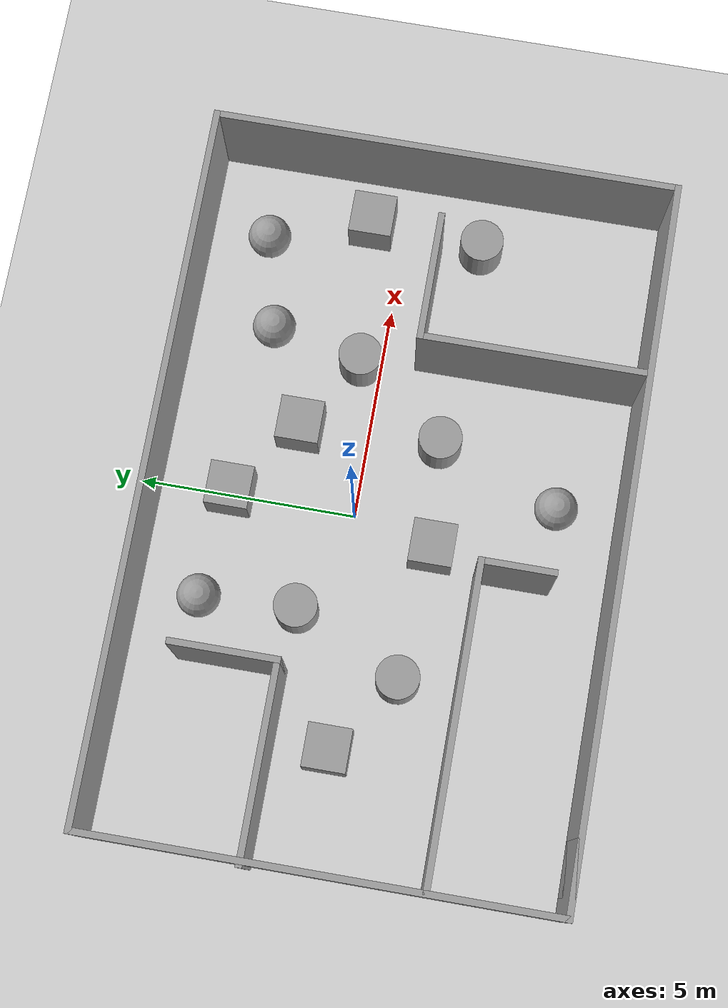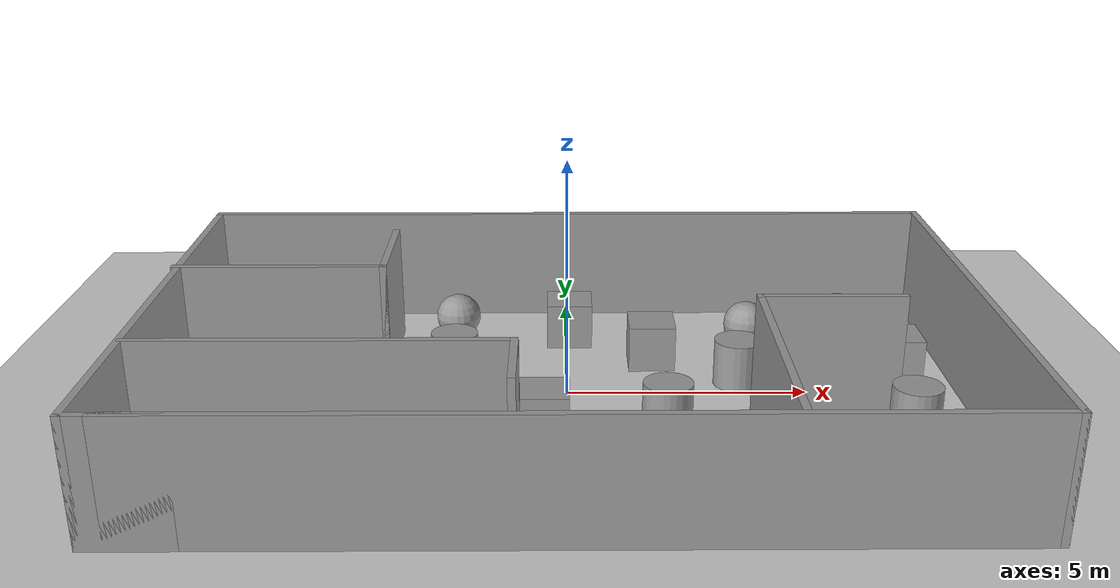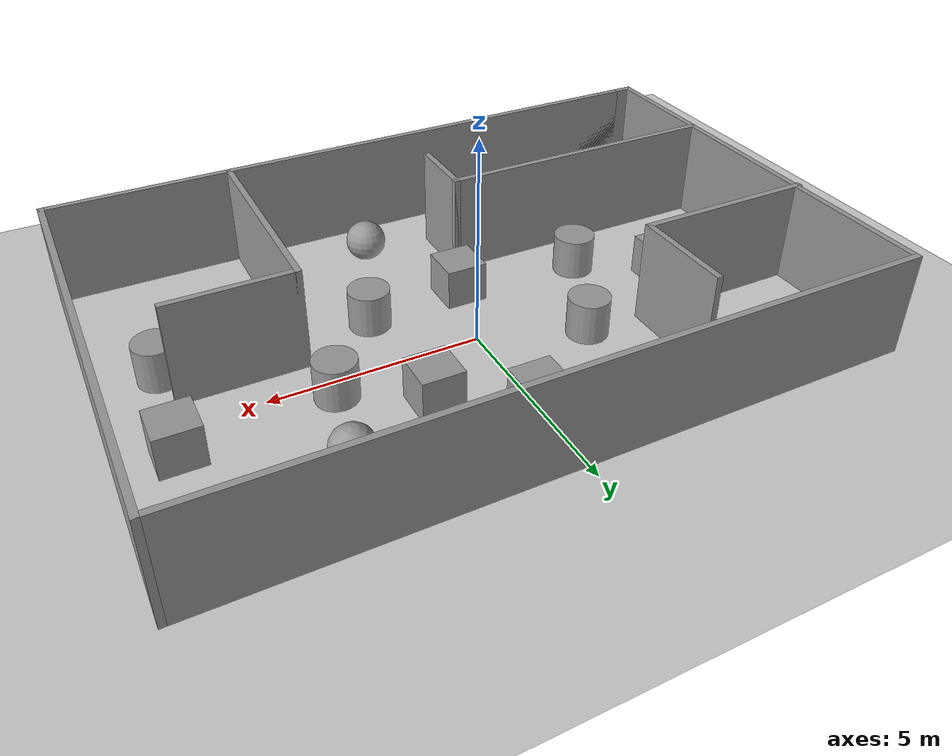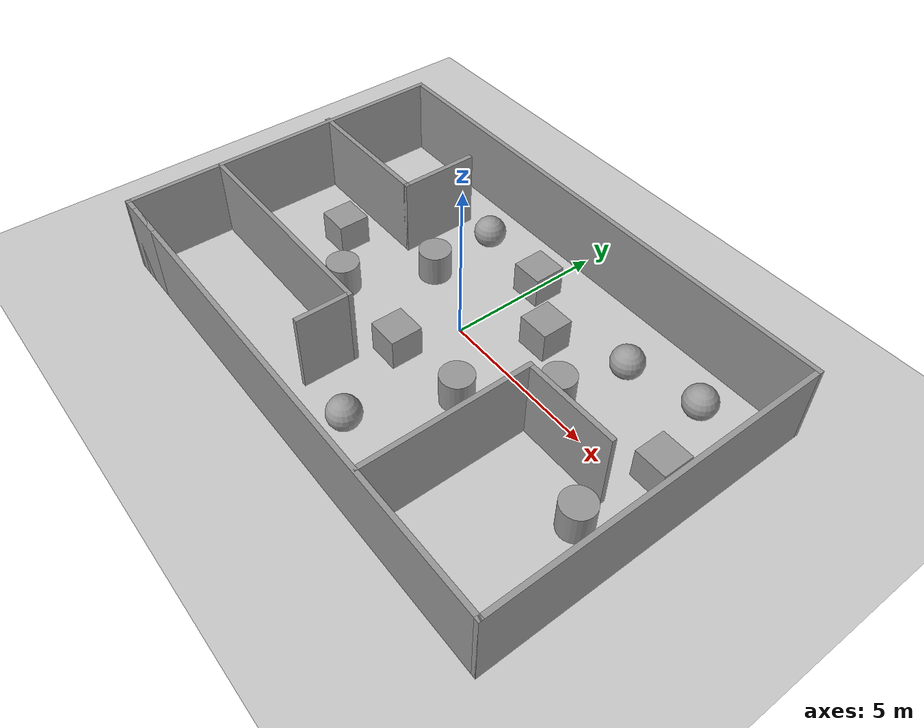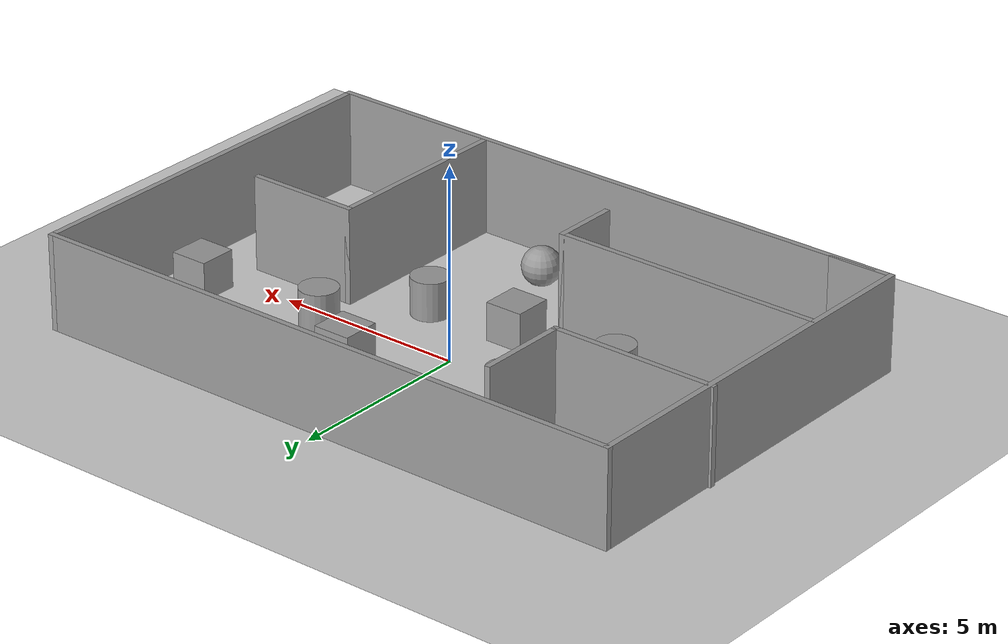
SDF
<sdf version="1.7">
 <world name="default">
  <light name="sun" type="directional">
   <pose>0 0 10 0 -0 0</pose>
   <diffuse>0.8 0.8 0.8 1</diffuse>
   <specular>0.2 0.2 0.2 1</specular>
   <attenuation>
    <range>1000</range>
    <constant>0.9</constant>
    <linear>0.01</linear>
    <quadratic>0.001</quadratic>
   </attenuation>
   <direction>-0.5 0.1 -0.9</direction>
   <spot><inner_angle>0</inner_angle><outer_angle>0</outer_angle><falloff>0</falloff></spot>
  </light>
  <model name="ground_plane">
   <static>1</static>
   <link name="link">
    <collision name="collision">
     <geometry><plane><normal>0 0 1</normal><size>100 100</size></plane></geometry>
     <surface>
      <contact><collide_bitmask>65535</collide_bitmask></contact>
      <friction><ode><mu>100</mu><mu2>50</mu2></ode></friction>
     </surface>
    </collision>
    <visual name="visual">
     <cast_shadows>0</cast_shadows>
     <geometry><plane><normal>0 0 1</normal><size>100 100</size></plane></geometry>
     <material>
      <script><uri>file://media/materials/scripts/gazebo.material</uri><name>Gazebo/Grey</name></script>
     </material>
    </visual>
   </link>
  </model>
  <gravity>0 0 -9.8</gravity>
  <magnetic_field>6e-06 2.3e-05 -4.2e-05</magnetic_field>
  <atmosphere type="adiabatic"/>
  <physics type="ode">
   <max_step_size>0.001</max_step_size>
   <real_time_factor>1</real_time_factor>
   <real_time_update_rate>1000</real_time_update_rate>
  </physics>
  <scene><ambient>0.4 0.4 0.4 1</ambient><background>0.7 0.7 0.7 1</background><shadows>1</shadows></scene>
  <audio><device>default</device></audio>
  <spherical_coordinates>
   <surface_model>EARTH_WGS84</surface_model>
   <latitude_deg>0</latitude_deg>
   <longitude_deg>0</longitude_deg>
   <elevation>0</elevation>
   <heading_deg>0</heading_deg>
  </spherical_coordinates>
  <model name="room">
   <pose>0.011963 -0.693169 0 0 -0 0</pose>
   <link name="Wall_10">
    <collision name="Wall_10_Collision">
     <geometry><box><size>2.5 0.15 2.5</size></box></geometry>
     <pose>0 0 1.25 0 -0 0</pose>
    </collision>
    <visual name="Wall_10_Visual">
     <pose>0 0 1.25 0 -0 0</pose>
     <geometry><box><size>2.5 0.15 2.5</size></box></geometry>
     <material>
      <script><uri>file://media/materials/scripts/gazebo.material</uri><name>Gazebo/Grey</name></script>
      <ambient>1 1 1 1</ambient>
     </material>
     <meta><layer>0</layer></meta>
    </visual>
    <pose>-3.85938 2.82056 0 0 -0 1.5708</pose>
   </link>
   <link name="Wall_12">
    <collision name="Wall_12_Collision">
     <geometry><box><size>7.25 0.15 2.5</size></box></geometry>
     <pose>0 0 1.25 0 -0 0</pose>
    </collision>
    <visual name="Wall_12_Visual">
     <pose>0 0 1.25 0 -0 0</pose>
     <geometry><box><size>7.25 0.15 2.5</size></box></geometry>
     <material>
      <script><uri>file://media/materials/scripts/gazebo.material</uri><name>Gazebo/Grey</name></script>
      <ambient>1 1 1 1</ambient>
     </material>
     <meta><layer>0</layer></meta>
    </visual>
    <pose>-4.53632 -2.29222 0 0 -0 0</pose>
   </link>
   <link name="Wall_13">
    <collision name="Wall_13_Collision">
     <geometry><box><size>1.75 0.15 2.5</size></box></geometry>
     <pose>0 0 1.25 0 -0 0</pose>
    </collision>
    <visual name="Wall_13_Visual">
     <pose>0 0 1.25 0 -0 0</pose>
     <geometry><box><size>1.75 0.15 2.5</size></box></geometry>
     <material>
      <script><uri>file://media/materials/scripts/gazebo.material</uri><name>Gazebo/Grey</name></script>
      <ambient>1 1 1 1</ambient>
     </material>
     <meta><layer>0</layer></meta>
    </visual>
    <pose>-0.986324 -3.09222 0 0 -0 -1.5708</pose>
   </link>
   <link name="Wall_17">
    <collision name="Wall_17_Collision">
     <geometry><box><size>5.25 0.15 2.5</size></box></geometry>
     <pose>0 0 1.25 0 -0 0</pose>
    </collision>
    <visual name="Wall_17_Visual">
     <pose>0 0 1.25 0 -0 0</pose>
     <geometry><box><size>5.25 0.15 2.5</size></box></geometry>
     <material>
      <script><uri>file://media/materials/scripts/gazebo.material</uri><name>Gazebo/Grey</name></script>
      <ambient>1 1 1 1</ambient>
     </material>
     <meta><layer>0</layer></meta>
    </visual>
    <pose>3.78856 -2.69556 0 0 -0 1.5708</pose>
   </link>
   <link name="Wall_18">
    <collision name="Wall_18_Collision">
     <geometry><box><size>3 0.15 2.5</size></box></geometry>
     <pose>0 0 1.25 0 -0 0</pose>
    </collision>
    <visual name="Wall_18_Visual">
     <pose>0 0 1.25 0 -0 0</pose>
     <geometry><box><size>3 0.15 2.5</size></box></geometry>
     <material>
      <script><uri>file://media/materials/scripts/gazebo.material</uri><name>Gazebo/Grey</name></script>
      <ambient>1 1 1 1</ambient>
     </material>
     <meta><layer>0</layer></meta>
    </visual>
    <pose>5.21356 -0.145559 0 0 -0 0</pose>
   </link>
   <link name="Wall_3">
    <collision name="Wall_3_Collision">
     <geometry><box><size>16 0.15 2.5</size></box></geometry>
     <pose>0 0 1.25 0 -0 0</pose>
    </collision>
    <visual name="Wall_3_Visual">
     <pose>0 0 1.25 0 -0 0</pose>
     <geometry><box><size>16 0.15 2.5</size></box></geometry>
     <material>
      <script><uri>file://media/materials/scripts/gazebo.material</uri><name>Gazebo/Grey</name></script>
      <ambient>1 1 1 1</ambient>
     </material>
     <meta><layer>0</layer></meta>
    </visual>
    <pose>0.28438 -5.3 0 0 -0 0</pose>
   </link>
   <link name="Wall_4">
    <collision name="Wall_4_Collision">
     <geometry><box><size>10.75 0.15 2.5</size></box></geometry>
     <pose>0 0 1.25 0 -0 0</pose>
    </collision>
    <visual name="Wall_4_Visual">
     <pose>0 0 1.25 0 -0 0</pose>
     <geometry><box><size>10.75 0.15 2.5</size></box></geometry>
     <material>
      <script><uri>file://media/materials/scripts/gazebo.material</uri><name>Gazebo/Grey</name></script>
      <ambient>1 1 1 1</ambient>
     </material>
     <meta><layer>0</layer></meta>
    </visual>
    <pose>8.20938 -0 0 0 -0 1.5708</pose>
   </link>
   <link name="Wall_5">
    <collision name="Wall_5_Collision">
     <geometry><box><size>16.5 0.15 2.5</size></box></geometry>
     <pose>0 0 1.25 0 -0 0</pose>
    </collision>
    <visual name="Wall_5_Visual">
     <pose>0 0 1.25 0 -0 0</pose>
     <geometry><box><size>16.5 0.15 2.5</size></box></geometry>
     <material>
      <script><uri>file://media/materials/scripts/gazebo.material</uri><name>Gazebo/Grey</name></script>
      <ambient>1 1 1 1</ambient>
     </material>
     <meta><layer>0</layer></meta>
    </visual>
    <pose>0.03438 5.3 0 0 -0 3.14159</pose>
   </link>
   <link name="Wall_6">
    <collision name="Wall_6_Collision">
     <geometry><box><size>10.75 0.15 2.5</size></box></geometry>
     <pose>0 0 1.25 0 -0 0</pose>
    </collision>
    <visual name="Wall_6_Visual">
     <pose>0 0 1.25 0 -0 0</pose>
     <geometry><box><size>10.75 0.15 2.5</size></box></geometry>
     <material>
      <script><uri>file://media/materials/scripts/gazebo.material</uri><name>Gazebo/Grey</name></script>
      <ambient>1 1 1 1</ambient>
     </material>
     <meta><layer>0</layer></meta>
    </visual>
    <pose>-8.14062 -0 0 0 -0 -1.5708</pose>
   </link>
   <link name="Wall_7">
    <collision name="Wall_7_Collision">
     <geometry><box><size>1.75 0.15 2.5</size></box></geometry>
     <pose>0 0 1.25 0 -0 0</pose>
    </collision>
    <visual name="Wall_7_Visual">
     <pose>0 0 1.25 0 -0 0</pose>
     <geometry><box><size>1.75 0.15 2.5</size></box></geometry>
     <material>
      <script><uri>file://media/materials/scripts/gazebo.material</uri><name>Gazebo/Grey</name></script>
      <ambient>1 1 1 1</ambient>
     </material>
     <meta><layer>0</layer></meta>
    </visual>
    <pose>-7.34062 -5.3 0 0 -0 0</pose>
   </link>
   <link name="Wall_9">
    <collision name="Wall_9_Collision">
     <geometry><box><size>4.5 0.15 2.5</size></box></geometry>
     <pose>0 0 1.25 0 -0 0</pose>
    </collision>
    <visual name="Wall_9_Visual">
     <pose>0 0 1.25 0 -0 0</pose>
     <geometry><box><size>4.5 0.15 2.5</size></box></geometry>
     <material>
      <script><uri>file://media/materials/scripts/gazebo.material</uri><name>Gazebo/Grey</name></script>
      <ambient>1 1 1 1</ambient>
     </material>
     <meta><layer>0</layer></meta>
    </visual>
    <pose>-6.03438 1.64556 0 0 -0 0</pose>
   </link>
   <static>1</static>
  </model>
  <model name="unit_box">
   <pose>-5.39188 -0.350744 0.499995 -1e-05 -0 -0</pose>
   <link name="link">
    <inertial>
     <mass>1</mass>
     <inertia>
      <ixx>0.166667</ixx>
      <ixy>0</ixy>
      <ixz>0</ixz>
      <iyy>0.166667</iyy>
      <iyz>0</iyz>
      <izz>0.166667</izz>
     </inertia>
    </inertial>
    <collision name="collision"><geometry><box><size>1 1 1</size></box></geometry></collision>
    <visual name="visual">
     <geometry><box><size>1 1 1</size></box></geometry>
     <material>
      <script><name>Gazebo/Grey</name><uri>file://media/materials/scripts/gazebo.material</uri></script>
     </material>
    </visual>
   </link>
  </model>
  <model name="unit_cylinder">
   <pose>-3.59928 -1.6188 0.499992 -3e-06 3e-06 0</pose>
   <link name="link">
    <inertial>
     <mass>1</mass>
     <inertia><ixx>0.145833</ixx><ixy>0</ixy><ixz>0</ixz><iyy>0.145833</iyy><iyz>0</iyz><izz>0.125</izz></inertia>
    </inertial>
    <collision name="collision">
     <geometry><cylinder><radius>0.5</radius><length>1</length></cylinder></geometry>
    </collision>
    <visual name="visual">
     <geometry><cylinder><radius>0.5</radius><length>1</length></cylinder></geometry>
     <material>
      <script><name>Gazebo/Grey</name><uri>file://media/materials/scripts/gazebo.material</uri></script>
     </material>
    </visual>
   </link>
  </model>
  <model name="unit_sphere">
   <pose>-2.47899 3.13122 0.5 0 -0 0</pose>
   <link name="link">
    <inertial>
     <mass>1</mass>
     <inertia><ixx>0.1</ixx><ixy>0</ixy><ixz>0</ixz><iyy>0.1</iyy><iyz>0</iyz><izz>0.1</izz></inertia>
    </inertial>
    <collision name="collision"><geometry><sphere><radius>0.5</radius></sphere></geometry></collision>
    <visual name="visual">
     <geometry><sphere><radius>0.5</radius></sphere></geometry>
     <material>
      <script><name>Gazebo/Grey</name><uri>file://media/materials/scripts/gazebo.material</uri></script>
     </material>
    </visual>
   </link>
  </model>
  <model name="unit_cylinder_0">
   <pose>-2.39916 0.904059 0.499992 -3e-06 3e-06 0</pose>
   <link name="link">
    <inertial>
     <mass>1</mass>
     <inertia><ixx>0.145833</ixx><ixy>0</ixy><ixz>0</ixz><iyy>0.145833</iyy><iyz>0</iyz><izz>0.125</izz></inertia>
    </inertial>
    <collision name="collision">
     <geometry><cylinder><radius>0.5</radius><length>1</length></cylinder></geometry>
    </collision>
    <visual name="visual">
     <geometry><cylinder><radius>0.5</radius><length>1</length></cylinder></geometry>
     <material>
      <script><name>Gazebo/Grey</name><uri>file://media/materials/scripts/gazebo.material</uri></script>
     </material>
    </visual>
   </link>
  </model>
  <model name="unit_box_0">
   <pose>-0.465709 -1.88094 0.499995 -1e-05 -0 -0</pose>
   <link name="link">
    <inertial>
     <mass>1</mass>
     <inertia>
      <ixx>0.166667</ixx>
      <ixy>0</ixy>
      <ixz>0</ixz>
      <iyy>0.166667</iyy>
      <iyz>0</iyz>
      <izz>0.166667</izz>
     </inertia>
    </inertial>
    <collision name="collision"><geometry><box><size>1 1 1</size></box></geometry></collision>
    <visual name="visual">
     <geometry><box><size>1 1 1</size></box></geometry>
     <material>
      <script><name>Gazebo/Grey</name><uri>file://media/materials/scripts/gazebo.material</uri></script>
     </material>
    </visual>
   </link>
  </model>
  <model name="unit_box_1">
   <pose>0.06598 2.88817 0.499995 0 1e-05 0</pose>
   <link name="link">
    <inertial>
     <mass>1</mass>
     <inertia>
      <ixx>0.166667</ixx>
      <ixy>0</ixy>
      <ixz>0</ixz>
      <iyy>0.166667</iyy>
      <iyz>0</iyz>
      <izz>0.166667</izz>
     </inertia>
    </inertial>
    <collision name="collision"><geometry><box><size>1 1 1</size></box></geometry></collision>
    <visual name="visual">
     <geometry><box><size>1 1 1</size></box></geometry>
     <material>
      <script><name>Gazebo/Grey</name><uri>file://media/materials/scripts/gazebo.material</uri></script>
     </material>
    </visual>
   </link>
  </model>
  <model name="unit_sphere_0">
   <pose>0.876013 -4.51706 0.5 0 -0 0</pose>
   <link name="link">
    <inertial>
     <mass>1</mass>
     <inertia><ixx>0.1</ixx><ixy>0</ixy><ixz>0</ixz><iyy>0.1</iyy><iyz>0</iyz><izz>0.1</izz></inertia>
    </inertial>
    <collision name="collision"><geometry><sphere><radius>0.5</radius></sphere></geometry></collision>
    <visual name="visual">
     <geometry><sphere><radius>0.5</radius></sphere></geometry>
     <material>
      <script><name>Gazebo/Grey</name><uri>file://media/materials/scripts/gazebo.material</uri></script>
     </material>
    </visual>
   </link>
  </model>
  <model name="unit_sphere_1">
   <pose>4.06825 2.6183 0.5 0 -0 0</pose>
   <link name="link">
    <inertial>
     <mass>1</mass>
     <inertia><ixx>0.1</ixx><ixy>0</ixy><ixz>0</ixz><iyy>0.1</iyy><iyz>0</iyz><izz>0.1</izz></inertia>
    </inertial>
    <collision name="collision"><geometry><sphere><radius>0.5</radius></sphere></geometry></collision>
    <visual name="visual">
     <geometry><sphere><radius>0.5</radius></sphere></geometry>
     <material>
      <script><name>Gazebo/Grey</name><uri>file://media/materials/scripts/gazebo.material</uri></script>
     </material>
    </visual>
   </link>
  </model>
  <model name="unit_cylinder_1">
   <pose>3.60385 0.491377 0.499998 3e-06 -4e-06 0</pose>
   <link name="link">
    <inertial>
     <mass>1</mass>
     <inertia><ixx>0.145833</ixx><ixy>0</ixy><ixz>0</ixz><iyy>0.145833</iyy><iyz>0</iyz><izz>0.125</izz></inertia>
    </inertial>
    <collision name="collision">
     <geometry><cylinder><radius>0.5</radius><length>1</length></cylinder></geometry>
    </collision>
    <visual name="visual">
     <geometry><cylinder><radius>0.5</radius><length>1</length></cylinder></geometry>
     <material>
      <script><name>Gazebo/Grey</name><uri>file://media/materials/scripts/gazebo.material</uri></script>
     </material>
    </visual>
   </link>
  </model>
  <model name="unit_box_2">
   <pose>7.03362 0.802369 0.499995 0 1e-05 0</pose>
   <link name="link">
    <inertial>
     <mass>1</mass>
     <inertia>
      <ixx>0.166667</ixx>
      <ixy>0</ixy>
      <ixz>0</ixz>
      <iyy>0.166667</iyy>
      <iyz>0</iyz>
      <izz>0.166667</izz>
     </inertia>
    </inertial>
    <collision name="collision"><geometry><box><size>1 1 1</size></box></geometry></collision>
    <visual name="visual">
     <geometry><box><size>1 1 1</size></box></geometry>
     <material>
      <script><name>Gazebo/Grey</name><uri>file://media/materials/scripts/gazebo.material</uri></script>
     </material>
    </visual>
   </link>
  </model>
  <model name="unit_cylinder_2">
   <pose>6.80536 -1.82254 0.499993 -3e-06 -3e-06 0</pose>
   <link name="link">
    <inertial>
     <mass>1</mass>
     <inertia><ixx>0.145833</ixx><ixy>0</ixy><ixz>0</ixz><iyy>0.145833</iyy><iyz>0</iyz><izz>0.125</izz></inertia>
    </inertial>
    <collision name="collision">
     <geometry><cylinder><radius>0.5</radius><length>1</length></cylinder></geometry>
    </collision>
    <visual name="visual">
     <geometry><cylinder><radius>0.5</radius><length>1</length></cylinder></geometry>
     <material>
      <script><name>Gazebo/Grey</name><uri>file://media/materials/scripts/gazebo.material</uri></script>
     </material>
    </visual>
   </link>
  </model>
  <model name="unit_sphere_2">
   <pose>6.23445 3.13092 0.5 0 -0 0</pose>
   <link name="link">
    <inertial>
     <mass>1</mass>
     <inertia><ixx>0.1</ixx><ixy>0</ixy><ixz>0</ixz><iyy>0.1</iyy><iyz>0</iyz><izz>0.1</izz></inertia>
    </inertial>
    <collision name="collision"><geometry><sphere><radius>0.5</radius></sphere></geometry></collision>
    <visual name="visual">
     <geometry><sphere><radius>0.5</radius></sphere></geometry>
     <material>
      <script><name>Gazebo/Grey</name><uri>file://media/materials/scripts/gazebo.material</uri></script>
     </material>
    </visual>
   </link>
  </model>
  <model name="unit_cylinder_3">
   <pose>1.96262 -1.64839 0.499993 -3e-06 -4e-06 -0</pose>
   <link name="link">
    <inertial>
     <mass>1</mass>
     <inertia><ixx>0.145833</ixx><ixy>0</ixy><ixz>0</ixz><iyy>0.145833</iyy><iyz>0</iyz><izz>0.125</izz></inertia>
    </inertial>
    <collision name="collision">
     <geometry><cylinder><radius>0.5</radius><length>1</length></cylinder></geometry>
    </collision>
    <visual name="visual">
     <geometry><cylinder><radius>0.5</radius><length>1</length></cylinder></geometry>
     <material>
      <script><name>Gazebo/Grey</name><uri>file://media/materials/scripts/gazebo.material</uri></script>
     </material>
    </visual>
   </link>
  </model>
  <model name="unit_box_3">
   <pose>1.84243 1.58771 0.5 0 -0 0</pose>
   <link name="link">
    <inertial>
     <mass>1</mass>
     <inertia>
      <ixx>0.166667</ixx>
      <ixy>0</ixy>
      <ixz>0</ixz>
      <iyy>0.166667</iyy>
      <iyz>0</iyz>
      <izz>0.166667</izz>
     </inertia>
    </inertial>
    <collision name="collision"><geometry><box><size>1 1 1</size></box></geometry></collision>
    <visual name="visual">
     <geometry><box><size>1 1 1</size></box></geometry>
     <material>
      <script><name>Gazebo/Grey</name><uri>file://media/materials/scripts/gazebo.material</uri></script>
     </material>
    </visual>
   </link>
  </model>
 </world>
</sdf>
